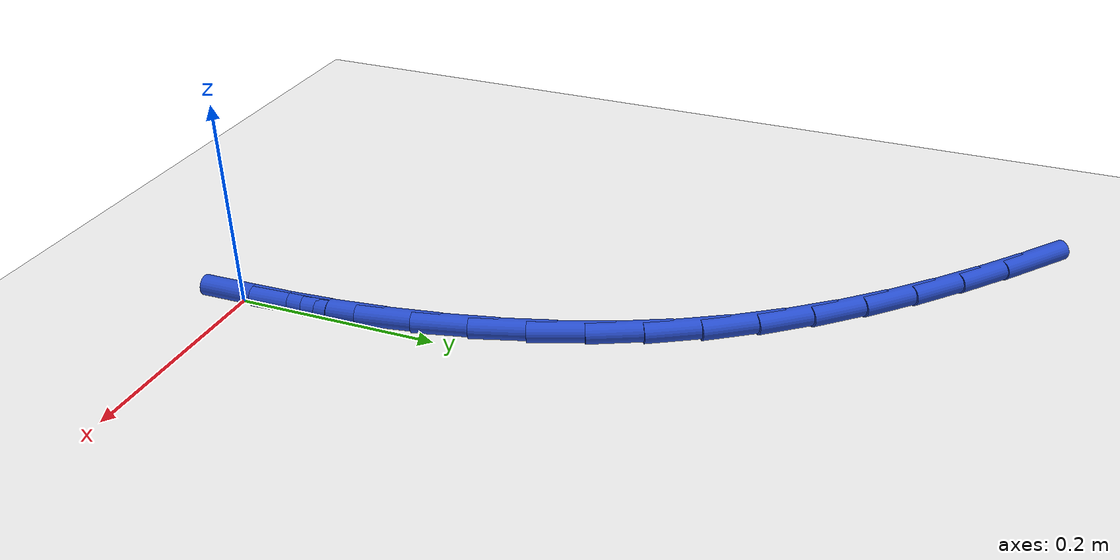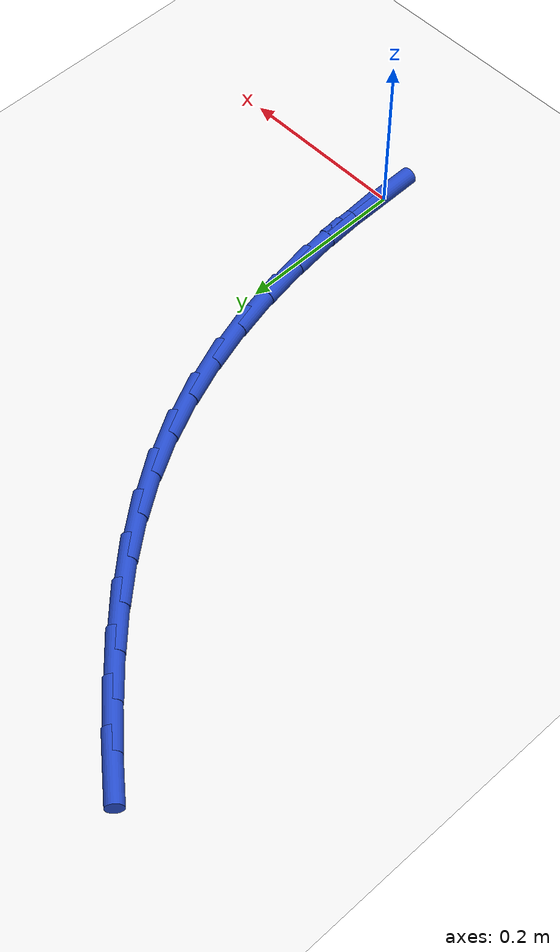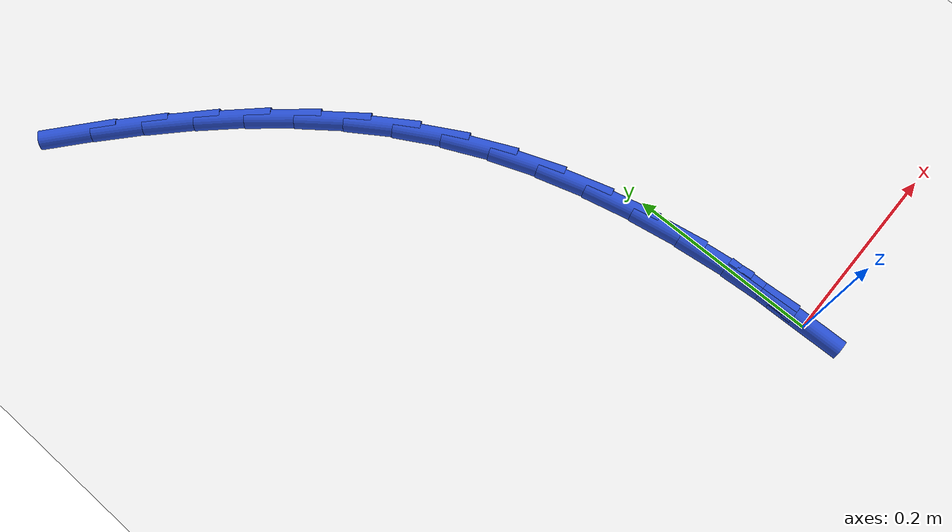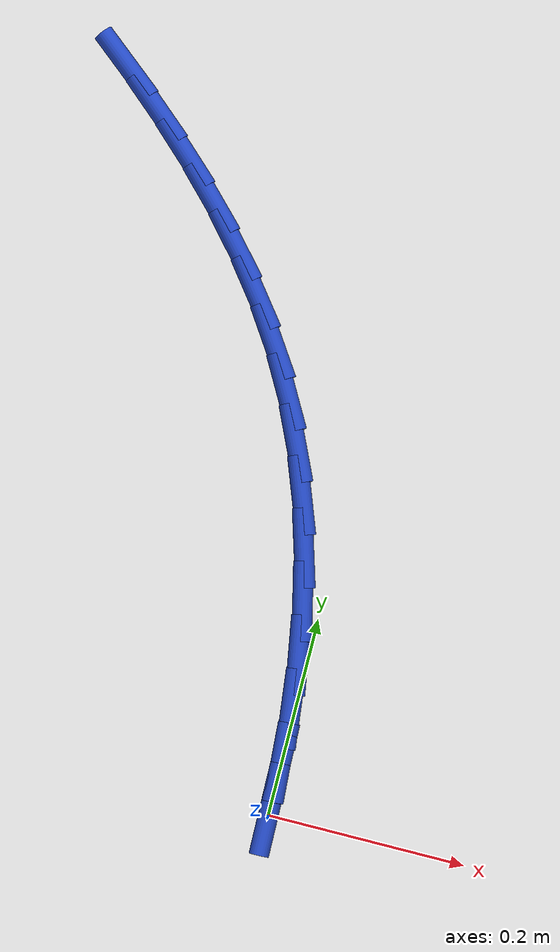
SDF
<sdf version="1.6">
 <world name="default">
  <model name="ground_plane">
   <static>1</static>
   <link name="link">
    <collision name="collision">
     <geometry><plane><normal>0 0 1</normal><size>100 100</size></plane></geometry>
     <surface><friction><ode><mu>100</mu><mu2>50</mu2></ode></friction></surface>
    </collision>
    <visual name="visual">
     <cast_shadows>0</cast_shadows>
     <geometry><plane><normal>0 0 1</normal><size>100 100</size></plane></geometry>
     <material>
      <script><uri>file://media/materials/scripts/gazebo.material</uri><name>Gazebo/WhiteGlow</name></script>
     </material>
    </visual>
   </link>
  </model>
  <model name="line">
   <link name="link_0">
    <pose>-6.938893903907228e-18 -5.551115123125783e-17 0.01 0 1.57 -1.5536091324365837</pose>
    <collision name="collision">
     <geometry><cylinder><radius>0.01</radius><length>0.08</length></cylinder></geometry>
    </collision>
    <visual name="visual">
     <material>
      <script><name>Gazebo/Blue</name><uri>file://media/materials/scripts/gazebo.material</uri></script>
     </material>
     <geometry><cylinder><radius>0.01</radius><length>0.08</length></cylinder></geometry>
    </visual>
   </link>
   <link name="link_1">
    <pose>-0.0009261721991384688 0.05388203455751325 0.01 0 1.57 -1.506277487060093</pose>
    <collision name="collision">
     <geometry><cylinder><radius>0.01</radius><length>0.08</length></cylinder></geometry>
    </collision>
    <visual name="visual">
     <material>
      <script><name>Gazebo/Blue</name><uri>file://media/materials/scripts/gazebo.material</uri></script>
     </material>
     <geometry><cylinder><radius>0.01</radius><length>0.08</length></cylinder></geometry>
    </visual>
   </link>
   <link name="link_2">
    <pose>-0.004393588145102005 0.1075501317525404 0.01 0 1.57 -1.4556395476896575</pose>
    <collision name="collision">
     <geometry><cylinder><radius>0.01</radius><length>0.08</length></cylinder></geometry>
    </collision>
    <visual name="visual">
     <material>
      <script><name>Gazebo/Blue</name><uri>file://media/materials/scripts/gazebo.material</uri></script>
     </material>
     <geometry><cylinder><radius>0.01</radius><length>0.08</length></cylinder></geometry>
    </visual>
   </link>
   <link name="link_3">
    <pose>-0.010547140231037505 0.16075001396793595 0.01 0 1.57 -1.401231748263885</pose>
    <collision name="collision">
     <geometry><cylinder><radius>0.01</radius><length>0.08</length></cylinder></geometry>
    </collision>
    <visual name="visual">
     <material>
      <script><name>Gazebo/Blue</name><uri>file://media/materials/scripts/gazebo.material</uri></script>
     </material>
     <geometry><cylinder><radius>0.01</radius><length>0.08</length></cylinder></geometry>
    </visual>
   </link>
   <link name="link_4">
    <pose>-0.019531720850091853 0.2132274035865544 0.01 0 1.57 -1.3426015674663332</pose>
    <collision name="collision">
     <geometry><cylinder><radius>0.01</radius><length>0.08</length></cylinder></geometry>
    </collision>
    <visual name="visual">
     <material>
      <script><name>Gazebo/Blue</name><uri>file://media/materials/scripts/gazebo.material</uri></script>
     </material>
     <geometry><cylinder><radius>0.01</radius><length>0.08</length></cylinder></geometry>
    </visual>
   </link>
   <link name="link_5">
    <pose>-0.03149222239541193 0.2647280229912505 0.01 0 1.57 -1.2793314403193823</pose>
    <collision name="collision">
     <geometry><cylinder><radius>0.01</radius><length>0.08</length></cylinder></geometry>
    </collision>
    <visual name="visual">
     <material>
      <script><name>Gazebo/Blue</name><uri>file://media/materials/scripts/gazebo.material</uri></script>
     </material>
     <geometry><cylinder><radius>0.01</radius><length>0.08</length></cylinder></geometry>
    </visual>
   </link>
   <link name="link_6">
    <pose>-0.046573537260144626 0.3149975945648787 0.01 0 1.57 -1.2110748103025246</pose>
    <collision name="collision">
     <geometry><cylinder><radius>0.01</radius><length>0.08</length></cylinder></geometry>
    </collision>
    <visual name="visual">
     <material>
      <script><name>Gazebo/Blue</name><uri>file://media/materials/scripts/gazebo.material</uri></script>
     </material>
     <geometry><cylinder><radius>0.01</radius><length>0.08</length></cylinder></geometry>
    </visual>
   </link>
   <link name="link_7">
    <pose>-0.0649205578374368 0.3637818406902935 0.01 0 1.57 -1.137605416900079</pose>
    <collision name="collision">
     <geometry><cylinder><radius>0.01</radius><length>0.08</length></cylinder></geometry>
    </collision>
    <visual name="visual">
     <material>
      <script><name>Gazebo/Blue</name><uri>file://media/materials/scripts/gazebo.material</uri></script>
     </material>
     <geometry><cylinder><radius>0.01</radius><length>0.08</length></cylinder></geometry>
    </visual>
   </link>
   <link name="link_8">
    <pose>-0.08667817652043538 0.4108264837503497 0.01 0 1.57 -1.0591342732809301</pose>
    <collision name="collision">
     <geometry><cylinder><radius>0.01</radius><length>0.08</length></cylinder></geometry>
    </collision>
    <visual name="visual">
     <material>
      <script><name>Gazebo/Blue</name><uri>file://media/materials/scripts/gazebo.material</uri></script>
     </material>
     <geometry><cylinder><radius>0.01</radius><length>0.08</length></cylinder></geometry>
    </visual>
   </link>
   <link name="link_9">
    <pose>-0.1119806879437011 0.45588540024555446 0.01 0 1.57 -0.9819720805931468</pose>
    <collision name="collision">
     <geometry><cylinder><radius>0.01</radius><length>0.08</length></cylinder></geometry>
    </collision>
    <visual name="visual">
     <material>
      <script><name>Gazebo/Blue</name><uri>file://media/materials/scripts/gazebo.material</uri></script>
     </material>
     <geometry><cylinder><radius>0.01</radius><length>0.08</length></cylinder></geometry>
    </visual>
   </link>
   <link name="link_10">
    <pose>-0.14071172585937933 0.4989053299417503 0.01 0 1.57 -0.9127349507992571</pose>
    <collision name="collision">
     <geometry><cylinder><radius>0.01</radius><length>0.08</length></cylinder></geometry>
    </collision>
    <visual name="visual">
     <material>
      <script><name>Gazebo/Blue</name><uri>file://media/materials/scripts/gazebo.material</uri></script>
     </material>
     <geometry><cylinder><radius>0.01</radius><length>0.08</length></cylinder></geometry>
    </visual>
   </link>
   <link name="link_11">
    <pose>-0.17250036167070532 0.5400288777328729 0.01 0 1.57 -0.8518553412091386</pose>
    <collision name="collision">
     <geometry><cylinder><radius>0.01</radius><length>0.08</length></cylinder></geometry>
    </collision>
    <visual name="visual">
     <material>
      <script><name>Gazebo/Blue</name><uri>file://media/materials/scripts/gazebo.material</uri></script>
     </material>
     <geometry><cylinder><radius>0.01</radius><length>0.08</length></cylinder></geometry>
    </visual>
   </link>
   <link name="link_12">
    <pose>-0.20696428867067962 0.5794074030479577 0.01 0 1.57 -0.7991875539620596</pose>
    <collision name="collision">
     <geometry><cylinder><radius>0.01</radius><length>0.08</length></cylinder></geometry>
    </collision>
    <visual name="visual">
     <material>
      <script><name>Gazebo/Blue</name><uri>file://media/materials/scripts/gazebo.material</uri></script>
     </material>
     <geometry><cylinder><radius>0.01</radius><length>0.08</length></cylinder></geometry>
    </visual>
   </link>
   <link name="link_13">
    <pose>-0.24372120015230236 0.6171922653160394 0.01 0 1.57 -0.7544118702482225</pose>
    <collision name="collision">
     <geometry><cylinder><radius>0.01</radius><length>0.08</length></cylinder></geometry>
    </collision>
    <visual name="visual">
     <material>
      <script><name>Gazebo/Blue</name><uri>file://media/materials/scripts/gazebo.material</uri></script>
     </material>
     <geometry><cylinder><radius>0.01</radius><length>0.08</length></cylinder></geometry>
    </visual>
   </link>
   <link name="link_14">
    <pose>-0.2823887894085741 0.6535348239661543 0.01 0 1.57 -0.7171387725169786</pose>
    <collision name="collision">
     <geometry><cylinder><radius>0.01</radius><length>0.08</length></cylinder></geometry>
    </collision>
    <visual name="visual">
     <material>
      <script><name>Gazebo/Blue</name><uri>file://media/materials/scripts/gazebo.material</uri></script>
     </material>
     <geometry><cylinder><radius>0.01</radius><length>0.08</length></cylinder></geometry>
    </visual>
   </link>
   <link name="link_15">
    <pose>-0.3225847497324952 0.6885864384273368 0.01 0 1.57 -0.6869849596414311</pose>
    <collision name="collision">
     <geometry><cylinder><radius>0.01</radius><length>0.08</length></cylinder></geometry>
    </collision>
    <visual name="visual">
     <material>
      <script><name>Gazebo/Blue</name><uri>file://media/materials/scripts/gazebo.material</uri></script>
     </material>
     <geometry><cylinder><radius>0.01</radius><length>0.08</length></cylinder></geometry>
    </visual>
   </link>
   <link name="link_141">
    <pose>-0.0008860613115291242 0.05388677716648186 0.01 0 1.57 -1.5543547892708727</pose>
    <collision name="collision">
     <geometry><cylinder><radius>0.01</radius><length>0.08</length></cylinder></geometry>
    </collision>
    <visual name="visual">
     <material>
      <script><name>Gazebo/Blue</name><uri>file://media/materials/scripts/gazebo.material</uri></script>
     </material>
     <geometry><cylinder><radius>0.01</radius><length>0.08</length></cylinder></geometry>
    </visual>
   </link>
  </model>
 </world>
</sdf>
